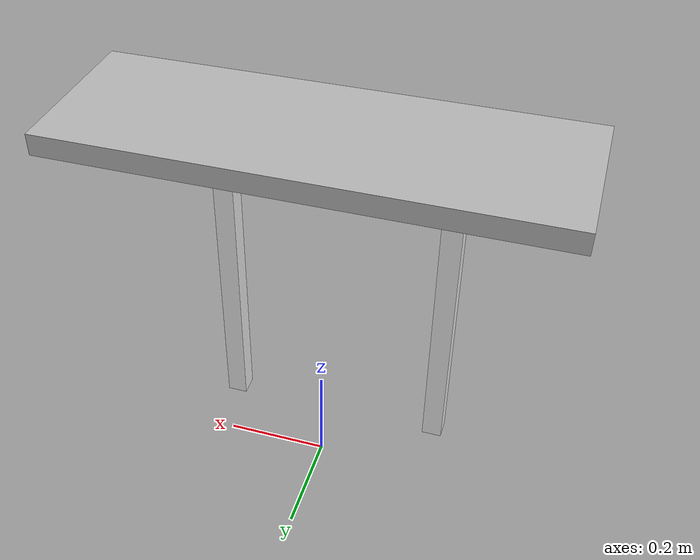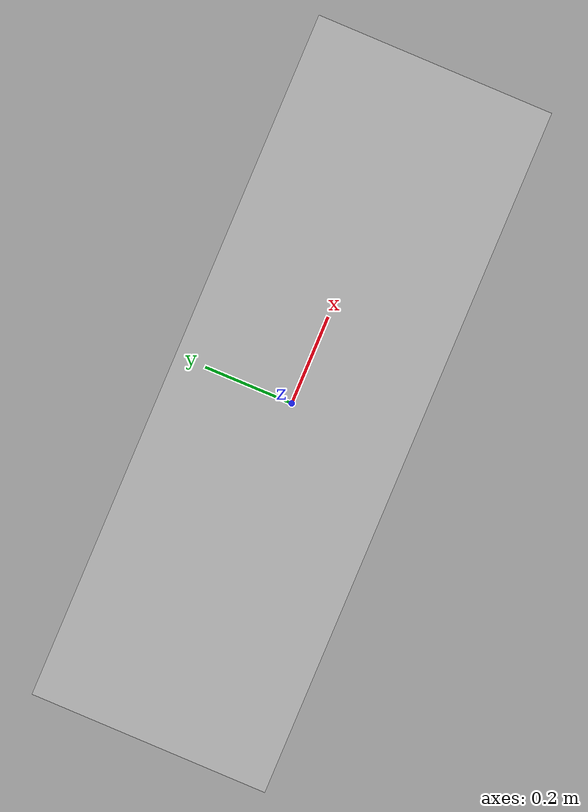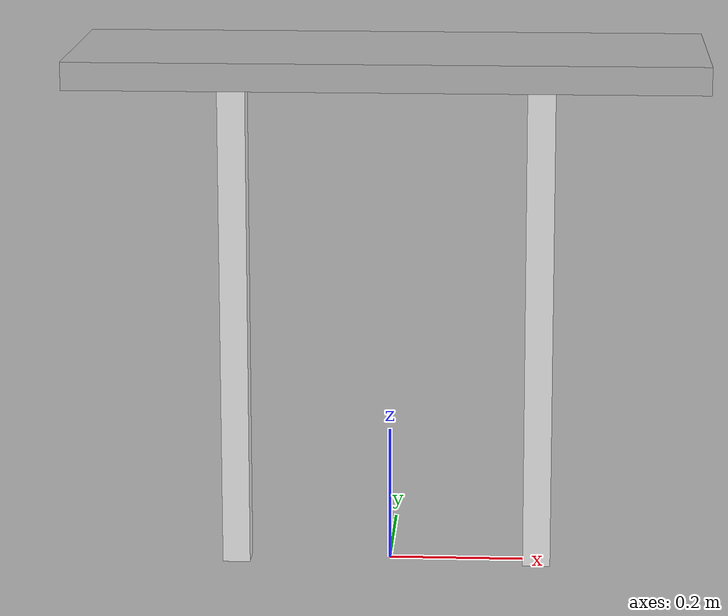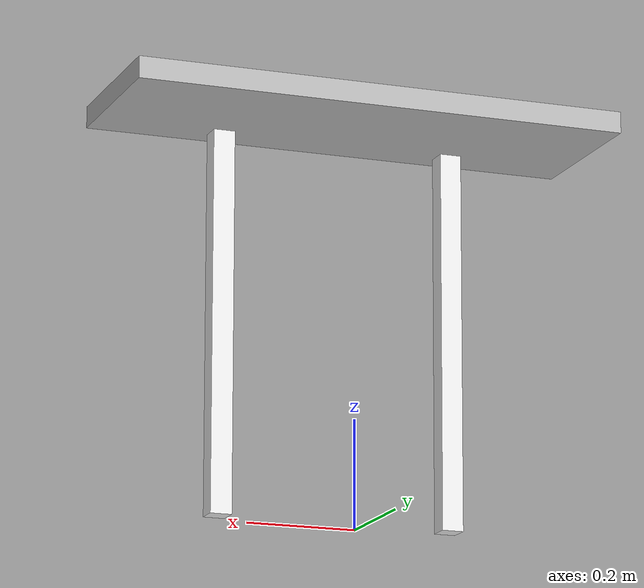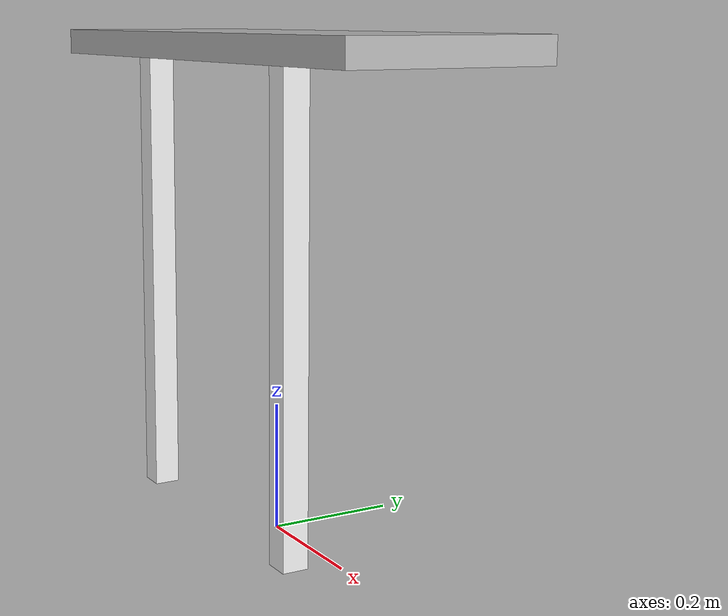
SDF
<?xml version="1.0"?>

<sdf version="1.6">
  <model name="end_table_right">
    <static>true</static>

    <link name="top_plate_right">
      <pose>0 0 0.755 0 0 0</pose>
      <collision name="top_plate_collision">
        <geometry>
          <box>
            <size>0.913 0.713 0.04</size>
          </box>
        </geometry>
        <surface>
          <contact>
            <collide_bitmask>0x01</collide_bitmask>
          </contact>
        </surface>
      </collision>
      <visual name="top_plate_visual">
        <geometry>
          <box>
            <size>0.913 0.313 0.04</size>
          </box>
        </geometry>
        <material>
          <script>
            <uri>model://end_table_right/materials/scripts</uri>
            <uri>model://end_table_right/materials/textures</uri>
            <name>grid/Image1</name>
          </script>
        </material>
      </visual>
    </link>
    <link name="leg_right">
      <pose>0.22 -0.1 0.4 0 0 0</pose>
      <collision name="leg_right_collision">
        <geometry>
          <box>
            <size>0.04 0.04 0.74</size>
          </box>
        </geometry>
      </collision>
      <visual name="leg_right_visual">
        <geometry>
          <box>
            <size>0.04 0.04 0.74</size>
          </box>
        </geometry>
        <material>
          <script>
            <uri>file://media/materials/scripts/gazebo.material</uri>
            <name>Gazebo/White</name>
          </script>
        </material>
      </visual>
    </link>
    <link name="leg2">
      <pose>-0.22 -0.1 0.4 0 0 0</pose>
      <collision name="leg2_collision">
        <geometry>
          <box>
            <size>0.04 0.04 0.74</size>
          </box>
        </geometry>
      </collision>
      <visual name="leg2_visual">
        <geometry>
          <box>
            <size>0.04 0.04 0.74</size>
          </box>
        </geometry>
        <material>
          <script>
            <uri>file://media/materials/scripts/gazebo.material</uri>
            <name>Gazebo/White</name>
          </script>
        </material>
      </visual>
    </link>
  </model>
</sdf>
